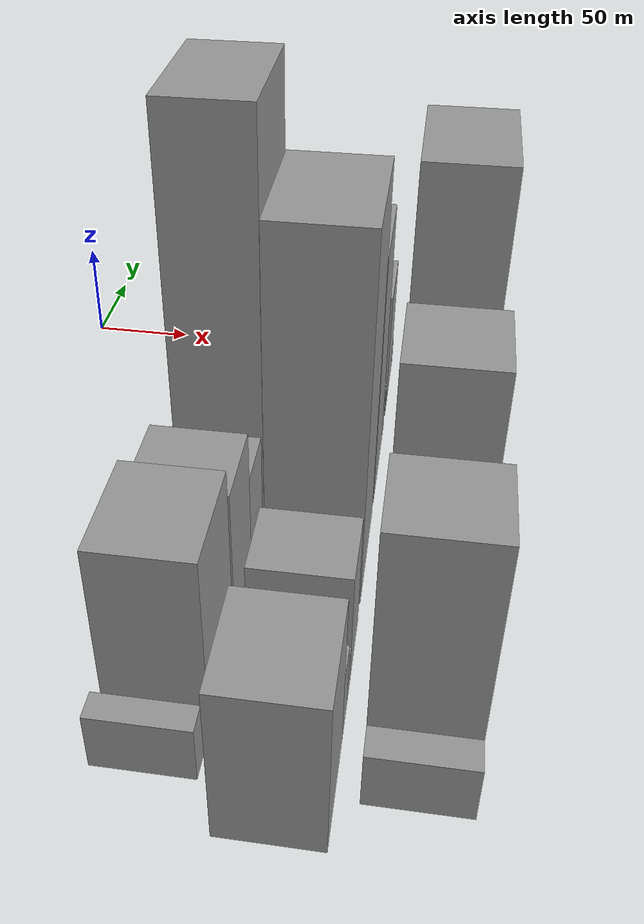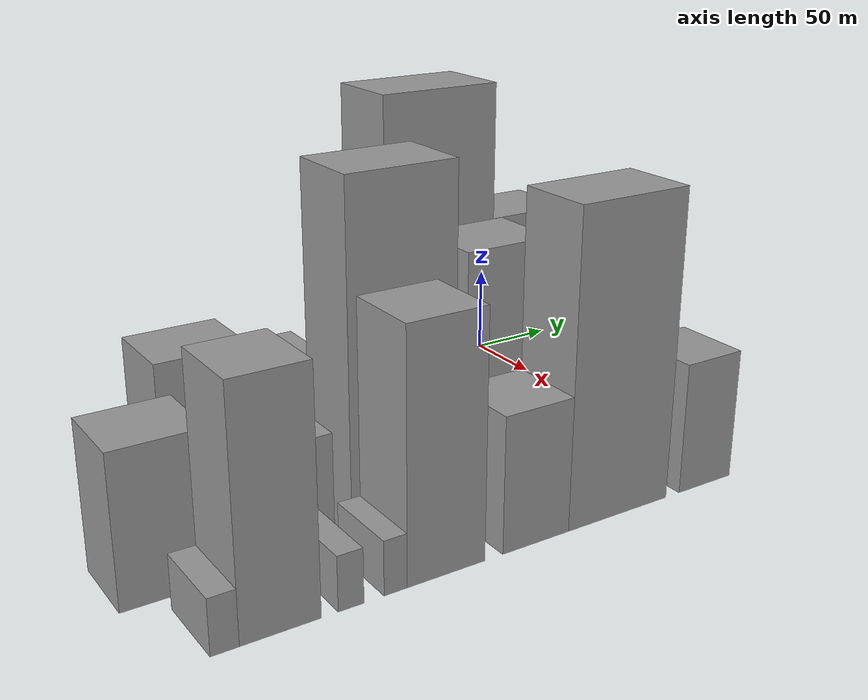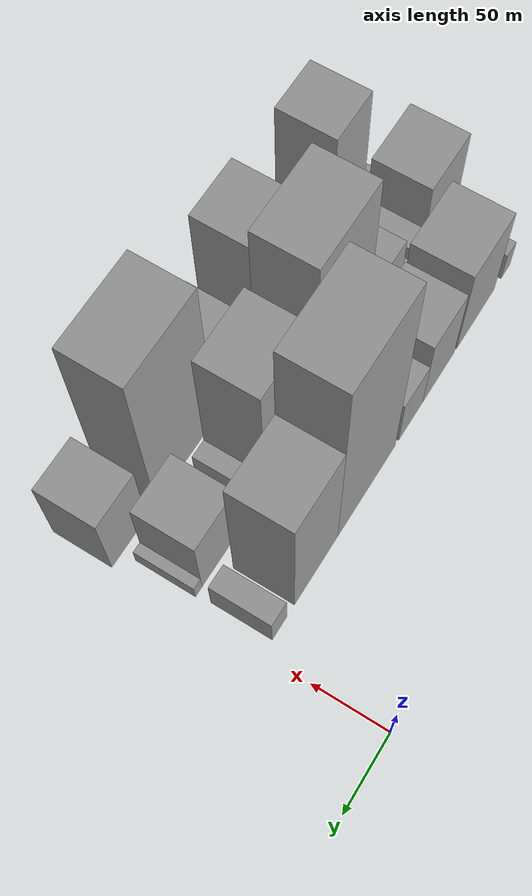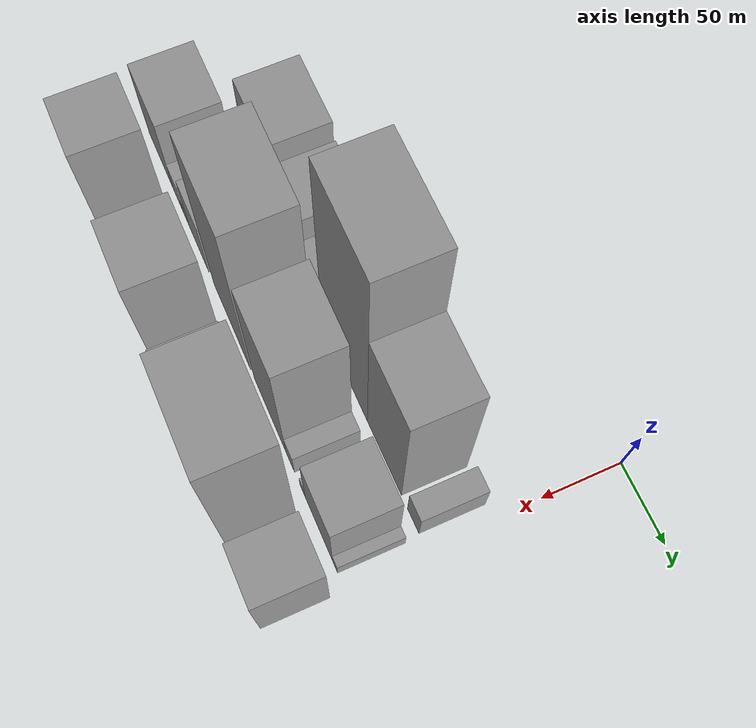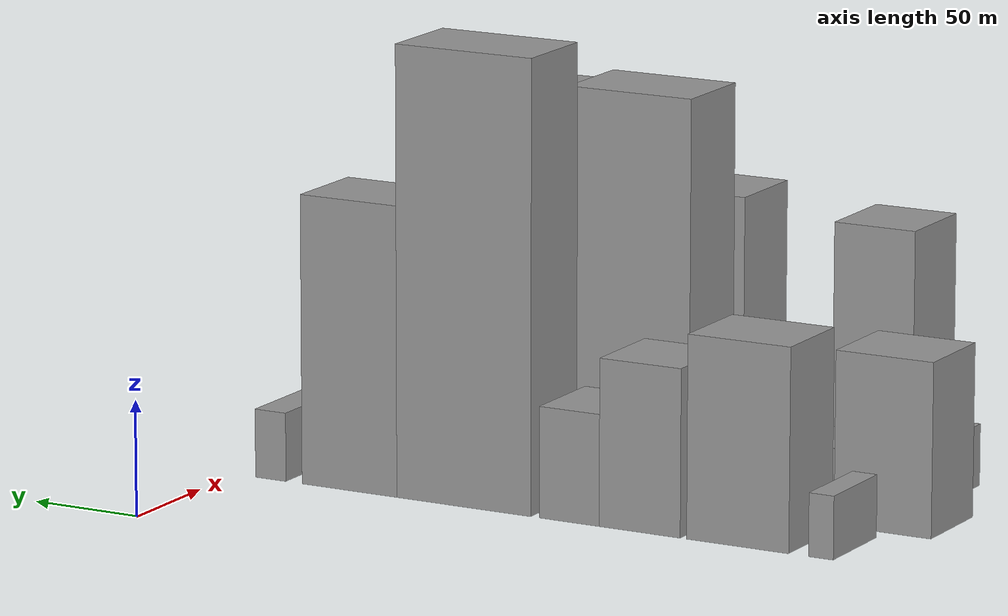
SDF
<sdf version="1.6">
 <world name="default">
  <model name="building_11">
   <static>1</static>
   <pose>100.0000 -278.9061 0 0.000000 0.000000 0.000000</pose>
   <link name="link">
    <pose>0 0 13.50 0 0 0</pose>
    <collision name="collision"><geometry><box><size>40.0000 11.3076 27.0000</size></box></geometry></collision>
    <visual name="visual">
     <cast_shadows>0</cast_shadows>
     <geometry><box><size>40.0000 11.3076 27.0000</size></box></geometry>
     <material>
      <script>
       <uri>model://grey_wall/materials/scripts</uri>
       <uri>model://grey_wall/materials/textures</uri>
       <name>vrc/grey_wall</name>
      </script>
     </material>
    </visual>
   </link>
  </model>
  <model name="building_12">
   <static>1</static>
   <pose>100.0000 -240.6720 0 0.000000 0.000000 0.000000</pose>
   <link name="link">
    <pose>0 0 43.50 0 0 0</pose>
    <collision name="collision"><geometry><box><size>40.0000 47.1606 87.0000</size></box></geometry></collision>
    <visual name="visual">
     <cast_shadows>0</cast_shadows>
     <geometry><box><size>40.0000 47.1606 87.0000</size></box></geometry>
     <material>
      <script>
       <uri>model://grey_wall/materials/scripts</uri>
       <uri>model://grey_wall/materials/textures</uri>
       <name>vrc/grey_wall</name>
      </script>
     </material>
    </visual>
   </link>
  </model>
  <model name="building_13">
   <static>1</static>
   <pose>100.0000 -195.0961 0 0.000000 0.000000 0.000000</pose>
   <link name="link">
    <pose>0 0 36.00 0 0 0</pose>
    <collision name="collision"><geometry><box><size>40.0000 37.9914 72.0000</size></box></geometry></collision>
    <visual name="visual">
     <cast_shadows>0</cast_shadows>
     <geometry><box><size>40.0000 37.9914 72.0000</size></box></geometry>
     <material>
      <script>
       <uri>model://grey_wall/materials/scripts</uri>
       <uri>model://grey_wall/materials/textures</uri>
       <name>vrc/grey_wall</name>
      </script>
     </material>
    </visual>
   </link>
  </model>
  <model name="building_14">
   <static>1</static>
   <pose>100.0000 -161.9064 0 0.000000 0.000000 0.000000</pose>
   <link name="link">
    <pose>0 0 24.00 0 0 0</pose>
    <collision name="collision"><geometry><box><size>40.0000 28.3878 48.0000</size></box></geometry></collision>
    <visual name="visual">
     <cast_shadows>0</cast_shadows>
     <geometry><box><size>40.0000 28.3878 48.0000</size></box></geometry>
     <material>
      <script>
       <uri>model://grey_wall/materials/scripts</uri>
       <uri>model://grey_wall/materials/textures</uri>
       <name>vrc/grey_wall</name>
      </script>
     </material>
    </visual>
   </link>
  </model>
  <model name="building_15">
   <static>1</static>
   <pose>100.0000 -111.3881 0 0.000000 0.000000 0.000000</pose>
   <link name="link">
    <pose>0 0 97.50 0 0 0</pose>
    <collision name="collision"><geometry><box><size>40.0000 64.6489 195.0000</size></box></geometry></collision>
    <visual name="visual">
     <cast_shadows>0</cast_shadows>
     <geometry><box><size>40.0000 64.6489 195.0000</size></box></geometry>
     <material>
      <script>
       <uri>model://grey_wall/materials/scripts</uri>
       <uri>model://grey_wall/materials/textures</uri>
       <name>vrc/grey_wall</name>
      </script>
     </material>
    </visual>
   </link>
  </model>
  <model name="building_16">
   <static>1</static>
   <pose>100.0000 -55.8032 0 0.000000 0.000000 0.000000</pose>
   <link name="link">
    <pose>0 0 63.00 0 0 0</pose>
    <collision name="collision"><geometry><box><size>40.0000 46.5208 126.0000</size></box></geometry></collision>
    <visual name="visual">
     <cast_shadows>0</cast_shadows>
     <geometry><box><size>40.0000 46.5208 126.0000</size></box></geometry>
     <material>
      <script>
       <uri>model://grey_wall/materials/scripts</uri>
       <uri>model://grey_wall/materials/textures</uri>
       <name>vrc/grey_wall</name>
      </script>
     </material>
    </visual>
   </link>
  </model>
  <model name="building_17">
   <static>1</static>
   <pose>100.0000 -16.9928 0 0.000000 0.000000 0.000000</pose>
   <link name="link">
    <pose>0 0 15.00 0 0 0</pose>
    <collision name="collision"><geometry><box><size>40.0000 15.0999 30.0000</size></box></geometry></collision>
    <visual name="visual">
     <cast_shadows>0</cast_shadows>
     <geometry><box><size>40.0000 15.0999 30.0000</size></box></geometry>
     <material>
      <script>
       <uri>model://grey_wall/materials/scripts</uri>
       <uri>model://grey_wall/materials/textures</uri>
       <name>vrc/grey_wall</name>
      </script>
     </material>
    </visual>
   </link>
  </model>
  <model name="building_44">
   <static>1</static>
   <pose>149.0000 -282.9376 0 0.000000 0.000000 0.000000</pose>
   <link name="link">
    <pose>0 0 37.50 0 0 0</pose>
    <collision name="collision"><geometry><box><size>40.0000 44.6527 75.0000</size></box></geometry></collision>
    <visual name="visual">
     <cast_shadows>0</cast_shadows>
     <geometry><box><size>40.0000 44.6527 75.0000</size></box></geometry>
     <material>
      <script>
       <uri>model://grey_wall/materials/scripts</uri>
       <uri>model://grey_wall/materials/textures</uri>
       <name>vrc/grey_wall</name>
      </script>
     </material>
    </visual>
   </link>
  </model>
  <model name="building_45">
   <static>1</static>
   <pose>149.0000 -252.1893 0 0.000000 0.000000 0.000000</pose>
   <link name="link">
    <pose>0 0 16.50 0 0 0</pose>
    <collision name="collision"><geometry><box><size>40.0000 16.8437 33.0000</size></box></geometry></collision>
    <visual name="visual">
     <cast_shadows>0</cast_shadows>
     <geometry><box><size>40.0000 16.8437 33.0000</size></box></geometry>
     <material>
      <script>
       <uri>model://grey_wall/materials/scripts</uri>
       <uri>model://grey_wall/materials/textures</uri>
       <name>vrc/grey_wall</name>
      </script>
     </material>
    </visual>
   </link>
  </model>
  <model name="building_46">
   <static>1</static>
   <pose>149.0000 -239.0738 0 0.000000 0.000000 0.000000</pose>
   <link name="link">
    <pose>0 0 10.50 0 0 0</pose>
    <collision name="collision"><geometry><box><size>40.0000 9.3873 21.0000</size></box></geometry></collision>
    <visual name="visual">
     <cast_shadows>0</cast_shadows>
     <geometry><box><size>40.0000 9.3873 21.0000</size></box></geometry>
     <material>
      <script>
       <uri>model://grey_wall/materials/scripts</uri>
       <uri>model://grey_wall/materials/textures</uri>
       <name>vrc/grey_wall</name>
      </script>
     </material>
    </visual>
   </link>
  </model>
  <model name="building_47">
   <static>1</static>
   <pose>149.0000 -217.9441 0 0.000000 0.000000 0.000000</pose>
   <link name="link">
    <pose>0 0 28.50 0 0 0</pose>
    <collision name="collision"><geometry><box><size>40.0000 32.8720 57.0000</size></box></geometry></collision>
    <visual name="visual">
     <cast_shadows>0</cast_shadows>
     <geometry><box><size>40.0000 32.8720 57.0000</size></box></geometry>
     <material>
      <script>
       <uri>model://grey_wall/materials/scripts</uri>
       <uri>model://grey_wall/materials/textures</uri>
       <name>vrc/grey_wall</name>
      </script>
     </material>
    </visual>
   </link>
  </model>
  <model name="building_48">
   <static>1</static>
   <pose>149.0000 -163.4722 0 0.000000 0.000000 0.000000</pose>
   <link name="link">
    <pose>0 0 87.00 0 0 0</pose>
    <collision name="collision"><geometry><box><size>40.0000 58.0720 174.0000</size></box></geometry></collision>
    <visual name="visual">
     <cast_shadows>0</cast_shadows>
     <geometry><box><size>40.0000 58.0720 174.0000</size></box></geometry>
     <material>
      <script>
       <uri>model://grey_wall/materials/scripts</uri>
       <uri>model://grey_wall/materials/textures</uri>
       <name>vrc/grey_wall</name>
      </script>
     </material>
    </visual>
   </link>
  </model>
  <model name="building_49">
   <static>1</static>
   <pose>149.0000 -104.3974 0 0.000000 0.000000 0.000000</pose>
   <link name="link">
    <pose>0 0 64.50 0 0 0</pose>
    <collision name="collision"><geometry><box><size>40.0000 48.0775 129.0000</size></box></geometry></collision>
    <visual name="visual">
     <cast_shadows>0</cast_shadows>
     <geometry><box><size>40.0000 48.0775 129.0000</size></box></geometry>
     <material>
      <script>
       <uri>model://grey_wall/materials/scripts</uri>
       <uri>model://grey_wall/materials/textures</uri>
       <name>vrc/grey_wall</name>
      </script>
     </material>
    </visual>
   </link>
  </model>
  <model name="building_50">
   <static>1</static>
   <pose>149.0000 -74.3201 0 0.000000 0.000000 0.000000</pose>
   <link name="link">
    <pose>0 0 13.50 0 0 0</pose>
    <collision name="collision"><geometry><box><size>40.0000 12.0771 27.0000</size></box></geometry></collision>
    <visual name="visual">
     <cast_shadows>0</cast_shadows>
     <geometry><box><size>40.0000 12.0771 27.0000</size></box></geometry>
     <material>
      <script>
       <uri>model://grey_wall/materials/scripts</uri>
       <uri>model://grey_wall/materials/textures</uri>
       <name>vrc/grey_wall</name>
      </script>
     </material>
    </visual>
   </link>
  </model>
  <model name="building_51">
   <static>1</static>
   <pose>149.0000 -56.5485 0 0.000000 0.000000 0.000000</pose>
   <link name="link">
    <pose>0 0 7.50 0 0 0</pose>
    <collision name="collision"><geometry><box><size>40.0000 7.4661 15.0000</size></box></geometry></collision>
    <visual name="visual">
     <cast_shadows>0</cast_shadows>
     <geometry><box><size>40.0000 7.4661 15.0000</size></box></geometry>
     <material>
      <script>
       <uri>model://grey_wall/materials/scripts</uri>
       <uri>model://grey_wall/materials/textures</uri>
       <name>vrc/grey_wall</name>
      </script>
     </material>
    </visual>
   </link>
  </model>
  <model name="building_52">
   <static>1</static>
   <pose>149.0000 -33.6352 0 0.000000 0.000000 0.000000</pose>
   <link name="link">
    <pose>0 0 33.00 0 0 0</pose>
    <collision name="collision"><geometry><box><size>40.0000 38.3605 66.0000</size></box></geometry></collision>
    <visual name="visual">
     <cast_shadows>0</cast_shadows>
     <geometry><box><size>40.0000 38.3605 66.0000</size></box></geometry>
     <material>
      <script>
       <uri>model://grey_wall/materials/scripts</uri>
       <uri>model://grey_wall/materials/textures</uri>
       <name>vrc/grey_wall</name>
      </script>
     </material>
    </visual>
   </link>
  </model>
  <model name="building_53">
   <static>1</static>
   <pose>149.0000 -11.0670 0 0.000000 0.000000 0.000000</pose>
   <link name="link">
    <pose>0 0 7.50 0 0 0</pose>
    <collision name="collision"><geometry><box><size>40.0000 6.7761 15.0000</size></box></geometry></collision>
    <visual name="visual">
     <cast_shadows>0</cast_shadows>
     <geometry><box><size>40.0000 6.7761 15.0000</size></box></geometry>
     <material>
      <script>
       <uri>model://grey_wall/materials/scripts</uri>
       <uri>model://grey_wall/materials/textures</uri>
       <name>vrc/grey_wall</name>
      </script>
     </material>
    </visual>
   </link>
  </model>
  <model name="building_78">
   <static>1</static>
   <pose>198.0000 -279.0936 0 0.000000 0.000000 0.000000</pose>
   <link name="link">
    <pose>0 0 13.50 0 0 0</pose>
    <collision name="collision"><geometry><box><size>40.0000 12.7592 27.0000</size></box></geometry></collision>
    <visual name="visual">
     <cast_shadows>0</cast_shadows>
     <geometry><box><size>40.0000 12.7592 27.0000</size></box></geometry>
     <material>
      <script>
       <uri>model://grey_wall/materials/scripts</uri>
       <uri>model://grey_wall/materials/textures</uri>
       <name>vrc/grey_wall</name>
      </script>
     </material>
    </visual>
   </link>
  </model>
  <model name="building_79">
   <static>1</static>
   <pose>198.0000 -253.9656 0 0.000000 0.000000 0.000000</pose>
   <link name="link">
    <pose>0 0 58.50 0 0 0</pose>
    <collision name="collision"><geometry><box><size>40.0000 37.4968 117.0000</size></box></geometry></collision>
    <visual name="visual">
     <cast_shadows>0</cast_shadows>
     <geometry><box><size>40.0000 37.4968 117.0000</size></box></geometry>
     <material>
      <script>
       <uri>model://grey_wall/materials/scripts</uri>
       <uri>model://grey_wall/materials/textures</uri>
       <name>vrc/grey_wall</name>
      </script>
     </material>
    </visual>
   </link>
  </model>
  <model name="building_80">
   <static>1</static>
   <pose>198.0000 -220.9035 0 0.000000 0.000000 0.000000</pose>
   <link name="link">
    <pose>0 0 13.50 0 0 0</pose>
    <collision name="collision"><geometry><box><size>40.0000 12.6274 27.0000</size></box></geometry></collision>
    <visual name="visual">
     <cast_shadows>0</cast_shadows>
     <geometry><box><size>40.0000 12.6274 27.0000</size></box></geometry>
     <material>
      <script>
       <uri>model://grey_wall/materials/scripts</uri>
       <uri>model://grey_wall/materials/textures</uri>
       <name>vrc/grey_wall</name>
      </script>
     </material>
    </visual>
   </link>
  </model>
  <model name="building_81">
   <static>1</static>
   <pose>198.0000 -198.7144 0 0.000000 0.000000 0.000000</pose>
   <link name="link">
    <pose>0 0 13.50 0 0 0</pose>
    <collision name="collision"><geometry><box><size>40.0000 11.7507 27.0000</size></box></geometry></collision>
    <visual name="visual">
     <cast_shadows>0</cast_shadows>
     <geometry><box><size>40.0000 11.7507 27.0000</size></box></geometry>
     <material>
      <script>
       <uri>model://grey_wall/materials/scripts</uri>
       <uri>model://grey_wall/materials/textures</uri>
       <name>vrc/grey_wall</name>
      </script>
     </material>
    </visual>
   </link>
  </model>
  <model name="building_82">
   <static>1</static>
   <pose>198.0000 -172.1056 0 0.000000 0.000000 0.000000</pose>
   <link name="link">
    <pose>0 0 61.50 0 0 0</pose>
    <collision name="collision"><geometry><box><size>40.0000 41.4671 123.0000</size></box></geometry></collision>
    <visual name="visual">
     <cast_shadows>0</cast_shadows>
     <geometry><box><size>40.0000 41.4671 123.0000</size></box></geometry>
     <material>
      <script>
       <uri>model://grey_wall/materials/scripts</uri>
       <uri>model://grey_wall/materials/textures</uri>
       <name>vrc/grey_wall</name>
      </script>
     </material>
    </visual>
   </link>
  </model>
  <model name="building_83">
   <static>1</static>
   <pose>198.0000 -122.1959 0 0.000000 0.000000 0.000000</pose>
   <link name="link">
    <pose>0 0 34.50 0 0 0</pose>
    <collision name="collision"><geometry><box><size>40.0000 38.3523 69.0000</size></box></geometry></collision>
    <visual name="visual">
     <cast_shadows>0</cast_shadows>
     <geometry><box><size>40.0000 38.3523 69.0000</size></box></geometry>
     <material>
      <script>
       <uri>model://grey_wall/materials/scripts</uri>
       <uri>model://grey_wall/materials/textures</uri>
       <name>vrc/grey_wall</name>
      </script>
     </material>
    </visual>
   </link>
  </model>
  <model name="building_84">
   <static>1</static>
   <pose>198.0000 -72.0944 0 0.000000 0.000000 0.000000</pose>
   <link name="link">
    <pose>0 0 79.50 0 0 0</pose>
    <collision name="collision"><geometry><box><size>40.0000 61.8507 159.0000</size></box></geometry></collision>
    <visual name="visual">
     <cast_shadows>0</cast_shadows>
     <geometry><box><size>40.0000 61.8507 159.0000</size></box></geometry>
     <material>
      <script>
       <uri>model://grey_wall/materials/scripts</uri>
       <uri>model://grey_wall/materials/textures</uri>
       <name>vrc/grey_wall</name>
      </script>
     </material>
    </visual>
   </link>
  </model>
  <model name="building_85">
   <static>1</static>
   <pose>198.0000 -14.7302 0 0.000000 0.000000 0.000000</pose>
   <link name="link">
    <pose>0 0 34.50 0 0 0</pose>
    <collision name="collision"><geometry><box><size>40.0000 34.8779 69.0000</size></box></geometry></collision>
    <visual name="visual">
     <cast_shadows>0</cast_shadows>
     <geometry><box><size>40.0000 34.8779 69.0000</size></box></geometry>
     <material>
      <script>
       <uri>model://grey_wall/materials/scripts</uri>
       <uri>model://grey_wall/materials/textures</uri>
       <name>vrc/grey_wall</name>
      </script>
     </material>
    </visual>
   </link>
  </model>
 </world>
</sdf>
